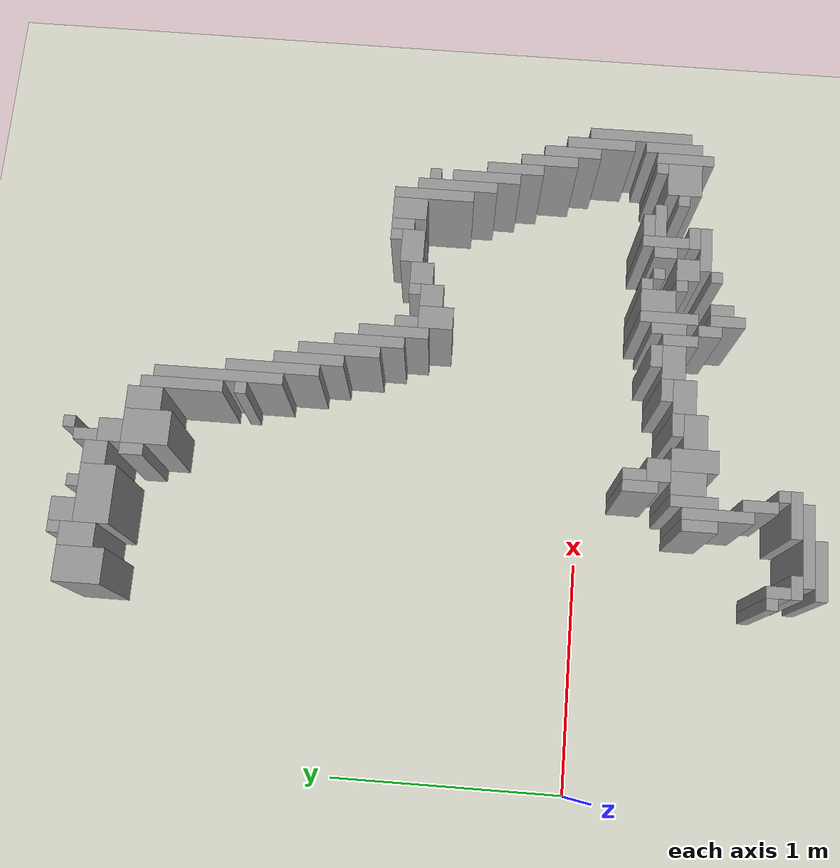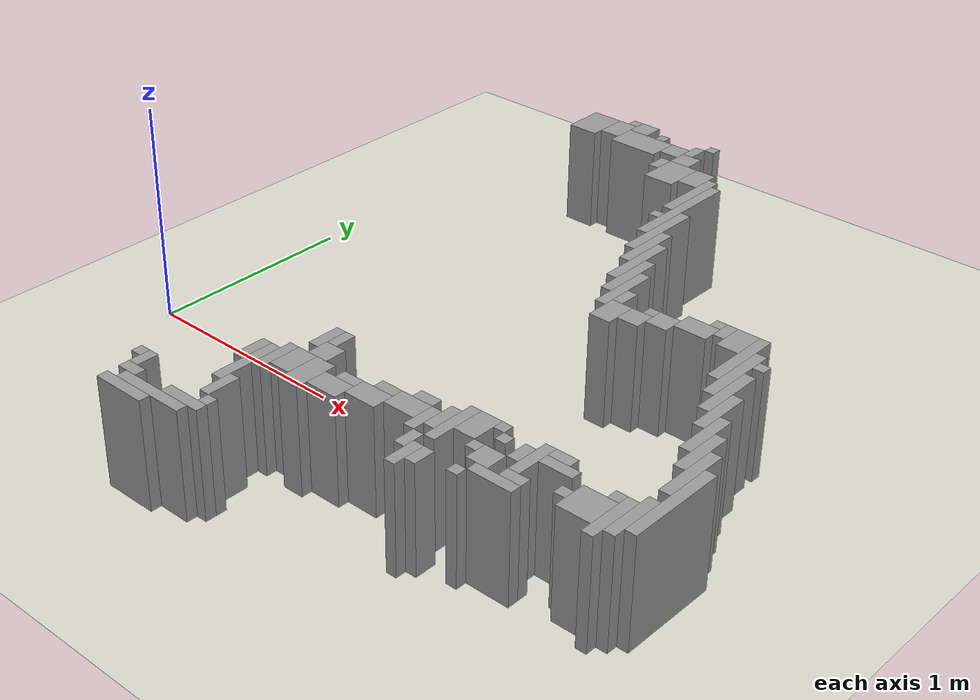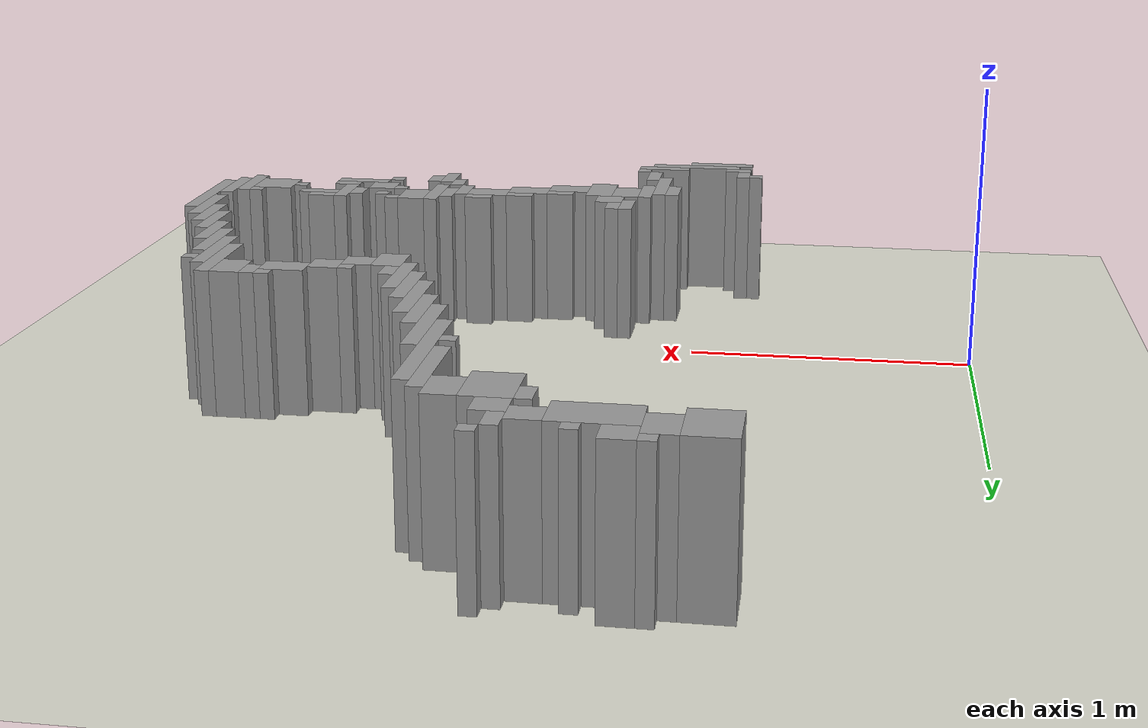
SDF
<sdf version="1.9">
 <world name="jetrover_room">
  <model name="ground_plane">
   <static>true</static>
   <link name="link">
    <collision name="c">
     <geometry><plane><normal>0 0 1</normal><size>20 20</size></plane></geometry>
     <surface><friction><ode><mu>1.0</mu><mu2>1.0</mu2></ode></friction></surface>
    </collision>
    <visual name="v">
     <geometry><plane><normal>0 0 1</normal><size>20 20</size></plane></geometry>
     <material><ambient>0.85 0.85 0.8 1</ambient><diffuse>0.85 0.85 0.8 1</diffuse></material>
    </visual>
   </link>
  </model>
  <model name="walls">
   <static>true</static>
   <link name="w5">
    <pose>0.9710 -0.9590 0.2500 0 0 0</pose>
    <collision name="c"><geometry><box><size>0.2500 0.0500 0.5000</size></box></geometry></collision>
    <visual name="v">
     <geometry><box><size>0.2500 0.0500 0.5000</size></box></geometry>
     <material><ambient>0.6 0.6 0.6 1</ambient><diffuse>0.6 0.6 0.6 1</diffuse></material>
    </visual>
   </link>
   <link name="w7">
    <pose>1.0710 -0.9090 0.2500 0 0 0</pose>
    <collision name="c"><geometry><box><size>0.3500 0.0500 0.5000</size></box></geometry></collision>
    <visual name="v">
     <geometry><box><size>0.3500 0.0500 0.5000</size></box></geometry>
     <material><ambient>0.6 0.6 0.6 1</ambient><diffuse>0.6 0.6 0.6 1</diffuse></material>
    </visual>
   </link>
   <link name="w10">
    <pose>0.8960 -0.8590 0.2500 0 0 0</pose>
    <collision name="c"><geometry><box><size>0.1000 0.0500 0.5000</size></box></geometry></collision>
    <visual name="v">
     <geometry><box><size>0.1000 0.0500 0.5000</size></box></geometry>
     <material><ambient>0.6 0.6 0.6 1</ambient><diffuse>0.6 0.6 0.6 1</diffuse></material>
    </visual>
   </link>
   <link name="w11">
    <pose>1.1960 -0.8590 0.2500 0 0 0</pose>
    <collision name="c"><geometry><box><size>0.2000 0.0500 0.5000</size></box></geometry></collision>
    <visual name="v">
     <geometry><box><size>0.2000 0.0500 0.5000</size></box></geometry>
     <material><ambient>0.6 0.6 0.6 1</ambient><diffuse>0.6 0.6 0.6 1</diffuse></material>
    </visual>
   </link>
   <link name="w13">
    <pose>0.8710 -0.7840 0.2500 0 0 0</pose>
    <collision name="c"><geometry><box><size>0.0500 0.1000 0.5000</size></box></geometry></collision>
    <visual name="v">
     <geometry><box><size>0.0500 0.1000 0.5000</size></box></geometry>
     <material><ambient>0.6 0.6 0.6 1</ambient><diffuse>0.6 0.6 0.6 1</diffuse></material>
    </visual>
   </link>
   <link name="w14">
    <pose>1.2710 -0.8090 0.2500 0 0 0</pose>
    <collision name="c"><geometry><box><size>0.0500 0.0500 0.5000</size></box></geometry></collision>
    <visual name="v">
     <geometry><box><size>0.0500 0.0500 0.5000</size></box></geometry>
     <material><ambient>0.6 0.6 0.6 1</ambient><diffuse>0.6 0.6 0.6 1</diffuse></material>
    </visual>
   </link>
   <link name="w18">
    <pose>0.8210 -0.7590 0.2500 0 0 0</pose>
    <collision name="c"><geometry><box><size>0.0500 0.0500 0.5000</size></box></geometry></collision>
    <visual name="v">
     <geometry><box><size>0.0500 0.0500 0.5000</size></box></geometry>
     <material><ambient>0.6 0.6 0.6 1</ambient><diffuse>0.6 0.6 0.6 1</diffuse></material>
    </visual>
   </link>
   <link name="w19">
    <pose>1.2210 -0.7090 0.2500 0 0 0</pose>
    <collision name="c"><geometry><box><size>0.0500 0.1500 0.5000</size></box></geometry></collision>
    <visual name="v">
     <geometry><box><size>0.0500 0.1500 0.5000</size></box></geometry>
     <material><ambient>0.6 0.6 0.6 1</ambient><diffuse>0.6 0.6 0.6 1</diffuse></material>
    </visual>
   </link>
   <link name="w20">
    <pose>1.1710 -0.5340 0.2500 0 0 0</pose>
    <collision name="c"><geometry><box><size>0.0500 0.3000 0.5000</size></box></geometry></collision>
    <visual name="v">
     <geometry><box><size>0.0500 0.3000 0.5000</size></box></geometry>
     <material><ambient>0.6 0.6 0.6 1</ambient><diffuse>0.6 0.6 0.6 1</diffuse></material>
    </visual>
   </link>
   <link name="w22">
    <pose>2.0210 -0.5590 0.2500 0 0 0</pose>
    <collision name="c"><geometry><box><size>0.0500 0.1500 0.5000</size></box></geometry></collision>
    <visual name="v">
     <geometry><box><size>0.0500 0.1500 0.5000</size></box></geometry>
     <material><ambient>0.6 0.6 0.6 1</ambient><diffuse>0.6 0.6 0.6 1</diffuse></material>
    </visual>
   </link>
   <link name="w23">
    <pose>2.0710 -0.5340 0.2500 0 0 0</pose>
    <collision name="c"><geometry><box><size>0.0500 0.1000 0.5000</size></box></geometry></collision>
    <visual name="v">
     <geometry><box><size>0.0500 0.1000 0.5000</size></box></geometry>
     <material><ambient>0.6 0.6 0.6 1</ambient><diffuse>0.6 0.6 0.6 1</diffuse></material>
    </visual>
   </link>
   <link name="w25">
    <pose>1.1210 -0.4590 0.2500 0 0 0</pose>
    <collision name="c"><geometry><box><size>0.0500 0.1500 0.5000</size></box></geometry></collision>
    <visual name="v">
     <geometry><box><size>0.0500 0.1500 0.5000</size></box></geometry>
     <material><ambient>0.6 0.6 0.6 1</ambient><diffuse>0.6 0.6 0.6 1</diffuse></material>
    </visual>
   </link>
   <link name="w26">
    <pose>1.2210 -0.4340 0.2500 0 0 0</pose>
    <collision name="c"><geometry><box><size>0.0500 0.2000 0.5000</size></box></geometry></collision>
    <visual name="v">
     <geometry><box><size>0.0500 0.2000 0.5000</size></box></geometry>
     <material><ambient>0.6 0.6 0.6 1</ambient><diffuse>0.6 0.6 0.6 1</diffuse></material>
    </visual>
   </link>
   <link name="w27">
    <pose>1.3960 -0.4340 0.2500 0 0 0</pose>
    <collision name="c"><geometry><box><size>0.1000 0.2000 0.5000</size></box></geometry></collision>
    <visual name="v">
     <geometry><box><size>0.1000 0.2000 0.5000</size></box></geometry>
     <material><ambient>0.6 0.6 0.6 1</ambient><diffuse>0.6 0.6 0.6 1</diffuse></material>
    </visual>
   </link>
   <link name="w28">
    <pose>1.9710 -0.4840 0.2500 0 0 0</pose>
    <collision name="c"><geometry><box><size>0.0500 0.1000 0.5000</size></box></geometry></collision>
    <visual name="v">
     <geometry><box><size>0.0500 0.1000 0.5000</size></box></geometry>
     <material><ambient>0.6 0.6 0.6 1</ambient><diffuse>0.6 0.6 0.6 1</diffuse></material>
    </visual>
   </link>
   <link name="w29">
    <pose>2.2210 -0.5090 0.2500 0 0 0</pose>
    <collision name="c"><geometry><box><size>0.0500 0.0500 0.5000</size></box></geometry></collision>
    <visual name="v">
     <geometry><box><size>0.0500 0.0500 0.5000</size></box></geometry>
     <material><ambient>0.6 0.6 0.6 1</ambient><diffuse>0.6 0.6 0.6 1</diffuse></material>
    </visual>
   </link>
   <link name="w30">
    <pose>1.2960 -0.4090 0.2500 0 0 0</pose>
    <collision name="c"><geometry><box><size>0.1000 0.1500 0.5000</size></box></geometry></collision>
    <visual name="v">
     <geometry><box><size>0.1000 0.1500 0.5000</size></box></geometry>
     <material><ambient>0.6 0.6 0.6 1</ambient><diffuse>0.6 0.6 0.6 1</diffuse></material>
    </visual>
   </link>
   <link name="w31">
    <pose>1.5210 -0.4340 0.2500 0 0 0</pose>
    <collision name="c"><geometry><box><size>0.1500 0.1000 0.5000</size></box></geometry></collision>
    <visual name="v">
     <geometry><box><size>0.1500 0.1000 0.5000</size></box></geometry>
     <material><ambient>0.6 0.6 0.6 1</ambient><diffuse>0.6 0.6 0.6 1</diffuse></material>
    </visual>
   </link>
   <link name="w32">
    <pose>2.3460 -0.4590 0.2500 0 0 0</pose>
    <collision name="c"><geometry><box><size>0.2000 0.0500 0.5000</size></box></geometry></collision>
    <visual name="v">
     <geometry><box><size>0.2000 0.0500 0.5000</size></box></geometry>
     <material><ambient>0.6 0.6 0.6 1</ambient><diffuse>0.6 0.6 0.6 1</diffuse></material>
    </visual>
   </link>
   <link name="w33">
    <pose>2.7710 -0.3590 0.2500 0 0 0</pose>
    <collision name="c"><geometry><box><size>0.0500 0.2500 0.5000</size></box></geometry></collision>
    <visual name="v">
     <geometry><box><size>0.0500 0.2500 0.5000</size></box></geometry>
     <material><ambient>0.6 0.6 0.6 1</ambient><diffuse>0.6 0.6 0.6 1</diffuse></material>
    </visual>
   </link>
   <link name="w35">
    <pose>1.6710 -0.3840 0.2500 0 0 0</pose>
    <collision name="c"><geometry><box><size>0.1500 0.1000 0.5000</size></box></geometry></collision>
    <visual name="v">
     <geometry><box><size>0.1500 0.1000 0.5000</size></box></geometry>
     <material><ambient>0.6 0.6 0.6 1</ambient><diffuse>0.6 0.6 0.6 1</diffuse></material>
    </visual>
   </link>
   <link name="w36">
    <pose>1.9210 -0.3590 0.2500 0 0 0</pose>
    <collision name="c"><geometry><box><size>0.0500 0.1500 0.5000</size></box></geometry></collision>
    <visual name="v">
     <geometry><box><size>0.0500 0.1500 0.5000</size></box></geometry>
     <material><ambient>0.6 0.6 0.6 1</ambient><diffuse>0.6 0.6 0.6 1</diffuse></material>
    </visual>
   </link>
   <link name="w37">
    <pose>2.0210 -0.3090 0.2500 0 0 0</pose>
    <collision name="c"><geometry><box><size>0.0500 0.2500 0.5000</size></box></geometry></collision>
    <visual name="v">
     <geometry><box><size>0.0500 0.2500 0.5000</size></box></geometry>
     <material><ambient>0.6 0.6 0.6 1</ambient><diffuse>0.6 0.6 0.6 1</diffuse></material>
    </visual>
   </link>
   <link name="w38">
    <pose>2.2460 -0.3840 0.2500 0 0 0</pose>
    <collision name="c"><geometry><box><size>0.1000 0.1000 0.5000</size></box></geometry></collision>
    <visual name="v">
     <geometry><box><size>0.1000 0.1000 0.5000</size></box></geometry>
     <material><ambient>0.6 0.6 0.6 1</ambient><diffuse>0.6 0.6 0.6 1</diffuse></material>
    </visual>
   </link>
   <link name="w39">
    <pose>2.3960 -0.4090 0.2500 0 0 0</pose>
    <collision name="c"><geometry><box><size>0.1000 0.0500 0.5000</size></box></geometry></collision>
    <visual name="v">
     <geometry><box><size>0.1000 0.0500 0.5000</size></box></geometry>
     <material><ambient>0.6 0.6 0.6 1</ambient><diffuse>0.6 0.6 0.6 1</diffuse></material>
    </visual>
   </link>
   <link name="w40">
    <pose>2.6710 -0.3590 0.2500 0 0 0</pose>
    <collision name="c"><geometry><box><size>0.1500 0.1500 0.5000</size></box></geometry></collision>
    <visual name="v">
     <geometry><box><size>0.1500 0.1500 0.5000</size></box></geometry>
     <material><ambient>0.6 0.6 0.6 1</ambient><diffuse>0.6 0.6 0.6 1</diffuse></material>
    </visual>
   </link>
   <link name="w41">
    <pose>2.8210 -0.3090 0.2500 0 0 0</pose>
    <collision name="c"><geometry><box><size>0.0500 0.2500 0.5000</size></box></geometry></collision>
    <visual name="v">
     <geometry><box><size>0.0500 0.2500 0.5000</size></box></geometry>
     <material><ambient>0.6 0.6 0.6 1</ambient><diffuse>0.6 0.6 0.6 1</diffuse></material>
    </visual>
   </link>
   <link name="w43">
    <pose>1.5460 -0.3590 0.2500 0 0 0</pose>
    <collision name="c"><geometry><box><size>0.1000 0.0500 0.5000</size></box></geometry></collision>
    <visual name="v">
     <geometry><box><size>0.1000 0.0500 0.5000</size></box></geometry>
     <material><ambient>0.6 0.6 0.6 1</ambient><diffuse>0.6 0.6 0.6 1</diffuse></material>
    </visual>
   </link>
   <link name="w44">
    <pose>1.8210 -0.3340 0.2500 0 0 0</pose>
    <collision name="c"><geometry><box><size>0.1500 0.1000 0.5000</size></box></geometry></collision>
    <visual name="v">
     <geometry><box><size>0.1500 0.1000 0.5000</size></box></geometry>
     <material><ambient>0.6 0.6 0.6 1</ambient><diffuse>0.6 0.6 0.6 1</diffuse></material>
    </visual>
   </link>
   <link name="w45">
    <pose>1.9710 -0.3090 0.2500 0 0 0</pose>
    <collision name="c"><geometry><box><size>0.0500 0.1500 0.5000</size></box></geometry></collision>
    <visual name="v">
     <geometry><box><size>0.0500 0.1500 0.5000</size></box></geometry>
     <material><ambient>0.6 0.6 0.6 1</ambient><diffuse>0.6 0.6 0.6 1</diffuse></material>
    </visual>
   </link>
   <link name="w46">
    <pose>2.1710 -0.3590 0.2500 0 0 0</pose>
    <collision name="c"><geometry><box><size>0.0500 0.0500 0.5000</size></box></geometry></collision>
    <visual name="v">
     <geometry><box><size>0.0500 0.0500 0.5000</size></box></geometry>
     <material><ambient>0.6 0.6 0.6 1</ambient><diffuse>0.6 0.6 0.6 1</diffuse></material>
    </visual>
   </link>
   <link name="w47">
    <pose>2.3710 -0.2840 0.2500 0 0 0</pose>
    <collision name="c"><geometry><box><size>0.0500 0.2000 0.5000</size></box></geometry></collision>
    <visual name="v">
     <geometry><box><size>0.0500 0.2000 0.5000</size></box></geometry>
     <material><ambient>0.6 0.6 0.6 1</ambient><diffuse>0.6 0.6 0.6 1</diffuse></material>
    </visual>
   </link>
   <link name="w48">
    <pose>2.5710 -0.3590 0.2500 0 0 0</pose>
    <collision name="c"><geometry><box><size>0.0500 0.0500 0.5000</size></box></geometry></collision>
    <visual name="v">
     <geometry><box><size>0.0500 0.0500 0.5000</size></box></geometry>
     <material><ambient>0.6 0.6 0.6 1</ambient><diffuse>0.6 0.6 0.6 1</diffuse></material>
    </visual>
   </link>
   <link name="w49">
    <pose>2.8710 -0.1590 0.2500 0 0 0</pose>
    <collision name="c"><geometry><box><size>0.0500 0.4500 0.5000</size></box></geometry></collision>
    <visual name="v">
     <geometry><box><size>0.0500 0.4500 0.5000</size></box></geometry>
     <material><ambient>0.6 0.6 0.6 1</ambient><diffuse>0.6 0.6 0.6 1</diffuse></material>
    </visual>
   </link>
   <link name="w51">
    <pose>1.3460 -0.2840 0.2500 0 0 0</pose>
    <collision name="c"><geometry><box><size>0.1000 0.1000 0.5000</size></box></geometry></collision>
    <visual name="v">
     <geometry><box><size>0.1000 0.1000 0.5000</size></box></geometry>
     <material><ambient>0.6 0.6 0.6 1</ambient><diffuse>0.6 0.6 0.6 1</diffuse></material>
    </visual>
   </link>
   <link name="w52">
    <pose>1.6960 -0.3090 0.2500 0 0 0</pose>
    <collision name="c"><geometry><box><size>0.1000 0.0500 0.5000</size></box></geometry></collision>
    <visual name="v">
     <geometry><box><size>0.1000 0.0500 0.5000</size></box></geometry>
     <material><ambient>0.6 0.6 0.6 1</ambient><diffuse>0.6 0.6 0.6 1</diffuse></material>
    </visual>
   </link>
   <link name="w53">
    <pose>2.0960 -0.2590 0.2500 0 0 0</pose>
    <collision name="c"><geometry><box><size>0.1000 0.1500 0.5000</size></box></geometry></collision>
    <visual name="v">
     <geometry><box><size>0.1000 0.1500 0.5000</size></box></geometry>
     <material><ambient>0.6 0.6 0.6 1</ambient><diffuse>0.6 0.6 0.6 1</diffuse></material>
    </visual>
   </link>
   <link name="w54">
    <pose>2.3210 -0.2840 0.2500 0 0 0</pose>
    <collision name="c"><geometry><box><size>0.0500 0.1000 0.5000</size></box></geometry></collision>
    <visual name="v">
     <geometry><box><size>0.0500 0.1000 0.5000</size></box></geometry>
     <material><ambient>0.6 0.6 0.6 1</ambient><diffuse>0.6 0.6 0.6 1</diffuse></material>
    </visual>
   </link>
   <link name="w58">
    <pose>1.2710 -0.2090 0.2500 0 0 0</pose>
    <collision name="c"><geometry><box><size>0.0500 0.1500 0.5000</size></box></geometry></collision>
    <visual name="v">
     <geometry><box><size>0.0500 0.1500 0.5000</size></box></geometry>
     <material><ambient>0.6 0.6 0.6 1</ambient><diffuse>0.6 0.6 0.6 1</diffuse></material>
    </visual>
   </link>
   <link name="w59">
    <pose>1.8460 -0.2590 0.2500 0 0 0</pose>
    <collision name="c"><geometry><box><size>0.1000 0.0500 0.5000</size></box></geometry></collision>
    <visual name="v">
     <geometry><box><size>0.1000 0.0500 0.5000</size></box></geometry>
     <material><ambient>0.6 0.6 0.6 1</ambient><diffuse>0.6 0.6 0.6 1</diffuse></material>
    </visual>
   </link>
   <link name="w60">
    <pose>2.2210 -0.2590 0.2500 0 0 0</pose>
    <collision name="c"><geometry><box><size>0.0500 0.0500 0.5000</size></box></geometry></collision>
    <visual name="v">
     <geometry><box><size>0.0500 0.0500 0.5000</size></box></geometry>
     <material><ambient>0.6 0.6 0.6 1</ambient><diffuse>0.6 0.6 0.6 1</diffuse></material>
    </visual>
   </link>
   <link name="w61">
    <pose>2.4710 -0.2590 0.2500 0 0 0</pose>
    <collision name="c"><geometry><box><size>0.1500 0.0500 0.5000</size></box></geometry></collision>
    <visual name="v">
     <geometry><box><size>0.1500 0.0500 0.5000</size></box></geometry>
     <material><ambient>0.6 0.6 0.6 1</ambient><diffuse>0.6 0.6 0.6 1</diffuse></material>
    </visual>
   </link>
   <link name="w62">
    <pose>2.7210 -0.2590 0.2500 0 0 0</pose>
    <collision name="c"><geometry><box><size>0.0500 0.0500 0.5000</size></box></geometry></collision>
    <visual name="v">
     <geometry><box><size>0.0500 0.0500 0.5000</size></box></geometry>
     <material><ambient>0.6 0.6 0.6 1</ambient><diffuse>0.6 0.6 0.6 1</diffuse></material>
    </visual>
   </link>
   <link name="w63">
    <pose>1.3210 -0.1840 0.2500 0 0 0</pose>
    <collision name="c"><geometry><box><size>0.0500 0.1000 0.5000</size></box></geometry></collision>
    <visual name="v">
     <geometry><box><size>0.0500 0.1000 0.5000</size></box></geometry>
     <material><ambient>0.6 0.6 0.6 1</ambient><diffuse>0.6 0.6 0.6 1</diffuse></material>
    </visual>
   </link>
   <link name="w64">
    <pose>2.1710 -0.2090 0.2500 0 0 0</pose>
    <collision name="c"><geometry><box><size>0.0500 0.0500 0.5000</size></box></geometry></collision>
    <visual name="v">
     <geometry><box><size>0.0500 0.0500 0.5000</size></box></geometry>
     <material><ambient>0.6 0.6 0.6 1</ambient><diffuse>0.6 0.6 0.6 1</diffuse></material>
    </visual>
   </link>
   <link name="w65">
    <pose>2.4460 -0.2090 0.2500 0 0 0</pose>
    <collision name="c"><geometry><box><size>0.1000 0.0500 0.5000</size></box></geometry></collision>
    <visual name="v">
     <geometry><box><size>0.1000 0.0500 0.5000</size></box></geometry>
     <material><ambient>0.6 0.6 0.6 1</ambient><diffuse>0.6 0.6 0.6 1</diffuse></material>
    </visual>
   </link>
   <link name="w68">
    <pose>2.8210 0.0160 0.2500 0 0 0</pose>
    <collision name="c"><geometry><box><size>0.0500 0.3000 0.5000</size></box></geometry></collision>
    <visual name="v">
     <geometry><box><size>0.0500 0.3000 0.5000</size></box></geometry>
     <material><ambient>0.6 0.6 0.6 1</ambient><diffuse>0.6 0.6 0.6 1</diffuse></material>
    </visual>
   </link>
   <link name="w72">
    <pose>2.7710 0.1410 0.2500 0 0 0</pose>
    <collision name="c"><geometry><box><size>0.0500 0.2500 0.5000</size></box></geometry></collision>
    <visual name="v">
     <geometry><box><size>0.0500 0.2500 0.5000</size></box></geometry>
     <material><ambient>0.6 0.6 0.6 1</ambient><diffuse>0.6 0.6 0.6 1</diffuse></material>
    </visual>
   </link>
   <link name="w76">
    <pose>2.7210 0.2410 0.2500 0 0 0</pose>
    <collision name="c"><geometry><box><size>0.0500 0.2500 0.5000</size></box></geometry></collision>
    <visual name="v">
     <geometry><box><size>0.0500 0.2500 0.5000</size></box></geometry>
     <material><ambient>0.6 0.6 0.6 1</ambient><diffuse>0.6 0.6 0.6 1</diffuse></material>
    </visual>
   </link>
   <link name="w80">
    <pose>2.6710 0.3910 0.2500 0 0 0</pose>
    <collision name="c"><geometry><box><size>0.0500 0.2500 0.5000</size></box></geometry></collision>
    <visual name="v">
     <geometry><box><size>0.0500 0.2500 0.5000</size></box></geometry>
     <material><ambient>0.6 0.6 0.6 1</ambient><diffuse>0.6 0.6 0.6 1</diffuse></material>
    </visual>
   </link>
   <link name="w82">
    <pose>2.6210 0.5160 0.2500 0 0 0</pose>
    <collision name="c"><geometry><box><size>0.0500 0.3000 0.5000</size></box></geometry></collision>
    <visual name="v">
     <geometry><box><size>0.0500 0.3000 0.5000</size></box></geometry>
     <material><ambient>0.6 0.6 0.6 1</ambient><diffuse>0.6 0.6 0.6 1</diffuse></material>
    </visual>
   </link>
   <link name="w83">
    <pose>2.5710 0.6410 0.2500 0 0 0</pose>
    <collision name="c"><geometry><box><size>0.0500 0.3500 0.5000</size></box></geometry></collision>
    <visual name="v">
     <geometry><box><size>0.0500 0.3500 0.5000</size></box></geometry>
     <material><ambient>0.6 0.6 0.6 1</ambient><diffuse>0.6 0.6 0.6 1</diffuse></material>
    </visual>
   </link>
   <link name="w84">
    <pose>2.5210 0.7410 0.2500 0 0 0</pose>
    <collision name="c"><geometry><box><size>0.0500 0.3500 0.5000</size></box></geometry></collision>
    <visual name="v">
     <geometry><box><size>0.0500 0.3500 0.5000</size></box></geometry>
     <material><ambient>0.6 0.6 0.6 1</ambient><diffuse>0.6 0.6 0.6 1</diffuse></material>
    </visual>
   </link>
   <link name="w86">
    <pose>1.9460 0.6910 0.2500 0 0 0</pose>
    <collision name="c"><geometry><box><size>0.1000 0.1500 0.5000</size></box></geometry></collision>
    <visual name="v">
     <geometry><box><size>0.1000 0.1500 0.5000</size></box></geometry>
     <material><ambient>0.6 0.6 0.6 1</ambient><diffuse>0.6 0.6 0.6 1</diffuse></material>
    </visual>
   </link>
   <link name="w89">
    <pose>2.0460 0.7160 0.2500 0 0 0</pose>
    <collision name="c"><geometry><box><size>0.1000 0.1000 0.5000</size></box></geometry></collision>
    <visual name="v">
     <geometry><box><size>0.1000 0.1000 0.5000</size></box></geometry>
     <material><ambient>0.6 0.6 0.6 1</ambient><diffuse>0.6 0.6 0.6 1</diffuse></material>
    </visual>
   </link>
   <link name="w92">
    <pose>1.8710 0.8660 0.2500 0 0 0</pose>
    <collision name="c"><geometry><box><size>0.0500 0.3000 0.5000</size></box></geometry></collision>
    <visual name="v">
     <geometry><box><size>0.0500 0.3000 0.5000</size></box></geometry>
     <material><ambient>0.6 0.6 0.6 1</ambient><diffuse>0.6 0.6 0.6 1</diffuse></material>
    </visual>
   </link>
   <link name="w93">
    <pose>2.1460 0.7660 0.2500 0 0 0</pose>
    <collision name="c"><geometry><box><size>0.1000 0.1000 0.5000</size></box></geometry></collision>
    <visual name="v">
     <geometry><box><size>0.1000 0.1000 0.5000</size></box></geometry>
     <material><ambient>0.6 0.6 0.6 1</ambient><diffuse>0.6 0.6 0.6 1</diffuse></material>
    </visual>
   </link>
   <link name="w94">
    <pose>2.6210 0.7410 0.2500 0 0 0</pose>
    <collision name="c"><geometry><box><size>0.0500 0.0500 0.5000</size></box></geometry></collision>
    <visual name="v">
     <geometry><box><size>0.0500 0.0500 0.5000</size></box></geometry>
     <material><ambient>0.6 0.6 0.6 1</ambient><diffuse>0.6 0.6 0.6 1</diffuse></material>
    </visual>
   </link>
   <link name="w96">
    <pose>1.9210 0.8160 0.2500 0 0 0</pose>
    <collision name="c"><geometry><box><size>0.0500 0.1000 0.5000</size></box></geometry></collision>
    <visual name="v">
     <geometry><box><size>0.0500 0.1000 0.5000</size></box></geometry>
     <material><ambient>0.6 0.6 0.6 1</ambient><diffuse>0.6 0.6 0.6 1</diffuse></material>
    </visual>
   </link>
   <link name="w97">
    <pose>2.0710 0.7910 0.2500 0 0 0</pose>
    <collision name="c"><geometry><box><size>0.0500 0.0500 0.5000</size></box></geometry></collision>
    <visual name="v">
     <geometry><box><size>0.0500 0.0500 0.5000</size></box></geometry>
     <material><ambient>0.6 0.6 0.6 1</ambient><diffuse>0.6 0.6 0.6 1</diffuse></material>
    </visual>
   </link>
   <link name="w98">
    <pose>2.2710 0.8160 0.2500 0 0 0</pose>
    <collision name="c"><geometry><box><size>0.1500 0.1000 0.5000</size></box></geometry></collision>
    <visual name="v">
     <geometry><box><size>0.1500 0.1000 0.5000</size></box></geometry>
     <material><ambient>0.6 0.6 0.6 1</ambient><diffuse>0.6 0.6 0.6 1</diffuse></material>
    </visual>
   </link>
   <link name="w99">
    <pose>2.4460 0.8410 0.2500 0 0 0</pose>
    <collision name="c"><geometry><box><size>0.1000 0.1500 0.5000</size></box></geometry></collision>
    <visual name="v">
     <geometry><box><size>0.1000 0.1500 0.5000</size></box></geometry>
     <material><ambient>0.6 0.6 0.6 1</ambient><diffuse>0.6 0.6 0.6 1</diffuse></material>
    </visual>
   </link>
   <link name="w103">
    <pose>1.8210 0.9660 0.2500 0 0 0</pose>
    <collision name="c"><geometry><box><size>0.0500 0.3000 0.5000</size></box></geometry></collision>
    <visual name="v">
     <geometry><box><size>0.0500 0.3000 0.5000</size></box></geometry>
     <material><ambient>0.6 0.6 0.6 1</ambient><diffuse>0.6 0.6 0.6 1</diffuse></material>
    </visual>
   </link>
   <link name="w104">
    <pose>2.3710 0.8660 0.2500 0 0 0</pose>
    <collision name="c"><geometry><box><size>0.0500 0.1000 0.5000</size></box></geometry></collision>
    <visual name="v">
     <geometry><box><size>0.0500 0.1000 0.5000</size></box></geometry>
     <material><ambient>0.6 0.6 0.6 1</ambient><diffuse>0.6 0.6 0.6 1</diffuse></material>
    </visual>
   </link>
   <link name="w106">
    <pose>2.3210 0.8910 0.2500 0 0 0</pose>
    <collision name="c"><geometry><box><size>0.0500 0.0500 0.5000</size></box></geometry></collision>
    <visual name="v">
     <geometry><box><size>0.0500 0.0500 0.5000</size></box></geometry>
     <material><ambient>0.6 0.6 0.6 1</ambient><diffuse>0.6 0.6 0.6 1</diffuse></material>
    </visual>
   </link>
   <link name="w108">
    <pose>1.7710 1.0910 0.2500 0 0 0</pose>
    <collision name="c"><geometry><box><size>0.0500 0.3500 0.5000</size></box></geometry></collision>
    <visual name="v">
     <geometry><box><size>0.0500 0.3500 0.5000</size></box></geometry>
     <material><ambient>0.6 0.6 0.6 1</ambient><diffuse>0.6 0.6 0.6 1</diffuse></material>
    </visual>
   </link>
   <link name="w114">
    <pose>1.7210 1.2160 0.2500 0 0 0</pose>
    <collision name="c"><geometry><box><size>0.0500 0.3000 0.5000</size></box></geometry></collision>
    <visual name="v">
     <geometry><box><size>0.0500 0.3000 0.5000</size></box></geometry>
     <material><ambient>0.6 0.6 0.6 1</ambient><diffuse>0.6 0.6 0.6 1</diffuse></material>
    </visual>
   </link>
   <link name="w118">
    <pose>1.6710 1.3660 0.2500 0 0 0</pose>
    <collision name="c"><geometry><box><size>0.0500 0.4000 0.5000</size></box></geometry></collision>
    <visual name="v">
     <geometry><box><size>0.0500 0.4000 0.5000</size></box></geometry>
     <material><ambient>0.6 0.6 0.6 1</ambient><diffuse>0.6 0.6 0.6 1</diffuse></material>
    </visual>
   </link>
   <link name="w124">
    <pose>1.6210 1.5910 0.2500 0 0 0</pose>
    <collision name="c"><geometry><box><size>0.0500 0.5500 0.5000</size></box></geometry></collision>
    <visual name="v">
     <geometry><box><size>0.0500 0.5500 0.5000</size></box></geometry>
     <material><ambient>0.6 0.6 0.6 1</ambient><diffuse>0.6 0.6 0.6 1</diffuse></material>
    </visual>
   </link>
   <link name="w129">
    <pose>1.5710 1.4910 0.2500 0 0 0</pose>
    <collision name="c"><geometry><box><size>0.0500 0.0500 0.5000</size></box></geometry></collision>
    <visual name="v">
     <geometry><box><size>0.0500 0.0500 0.5000</size></box></geometry>
     <material><ambient>0.6 0.6 0.6 1</ambient><diffuse>0.6 0.6 0.6 1</diffuse></material>
    </visual>
   </link>
   <link name="w135">
    <pose>1.5710 1.7410 0.2500 0 0 0</pose>
    <collision name="c"><geometry><box><size>0.0500 0.3500 0.5000</size></box></geometry></collision>
    <visual name="v">
     <geometry><box><size>0.0500 0.3500 0.5000</size></box></geometry>
     <material><ambient>0.6 0.6 0.6 1</ambient><diffuse>0.6 0.6 0.6 1</diffuse></material>
    </visual>
   </link>
   <link name="w139">
    <pose>1.3710 1.8660 0.2500 0 0 0</pose>
    <collision name="c"><geometry><box><size>0.1500 0.2000 0.5000</size></box></geometry></collision>
    <visual name="v">
     <geometry><box><size>0.1500 0.2000 0.5000</size></box></geometry>
     <material><ambient>0.6 0.6 0.6 1</ambient><diffuse>0.6 0.6 0.6 1</diffuse></material>
    </visual>
   </link>
   <link name="w141">
    <pose>1.4960 1.8910 0.2500 0 0 0</pose>
    <collision name="c"><geometry><box><size>0.1000 0.1500 0.5000</size></box></geometry></collision>
    <visual name="v">
     <geometry><box><size>0.1000 0.1500 0.5000</size></box></geometry>
     <material><ambient>0.6 0.6 0.6 1</ambient><diffuse>0.6 0.6 0.6 1</diffuse></material>
    </visual>
   </link>
   <link name="w144">
    <pose>1.2710 1.9160 0.2500 0 0 0</pose>
    <collision name="c"><geometry><box><size>0.0500 0.1000 0.5000</size></box></geometry></collision>
    <visual name="v">
     <geometry><box><size>0.0500 0.1000 0.5000</size></box></geometry>
     <material><ambient>0.6 0.6 0.6 1</ambient><diffuse>0.6 0.6 0.6 1</diffuse></material>
    </visual>
   </link>
   <link name="w151">
    <pose>0.7710 2.0660 0.2500 0 0 0</pose>
    <collision name="c"><geometry><box><size>0.1500 0.2000 0.5000</size></box></geometry></collision>
    <visual name="v">
     <geometry><box><size>0.1500 0.2000 0.5000</size></box></geometry>
     <material><ambient>0.6 0.6 0.6 1</ambient><diffuse>0.6 0.6 0.6 1</diffuse></material>
    </visual>
   </link>
   <link name="w152">
    <pose>1.0710 2.0410 0.2500 0 0 0</pose>
    <collision name="c"><geometry><box><size>0.2500 0.1500 0.5000</size></box></geometry></collision>
    <visual name="v">
     <geometry><box><size>0.2500 0.1500 0.5000</size></box></geometry>
     <material><ambient>0.6 0.6 0.6 1</ambient><diffuse>0.6 0.6 0.6 1</diffuse></material>
    </visual>
   </link>
   <link name="w153">
    <pose>1.3460 2.0160 0.2500 0 0 0</pose>
    <collision name="c"><geometry><box><size>0.1000 0.1000 0.5000</size></box></geometry></collision>
    <visual name="v">
     <geometry><box><size>0.1000 0.1000 0.5000</size></box></geometry>
     <material><ambient>0.6 0.6 0.6 1</ambient><diffuse>0.6 0.6 0.6 1</diffuse></material>
    </visual>
   </link>
   <link name="w155">
    <pose>0.8960 2.0910 0.2500 0 0 0</pose>
    <collision name="c"><geometry><box><size>0.1000 0.1500 0.5000</size></box></geometry></collision>
    <visual name="v">
     <geometry><box><size>0.1000 0.1500 0.5000</size></box></geometry>
     <material><ambient>0.6 0.6 0.6 1</ambient><diffuse>0.6 0.6 0.6 1</diffuse></material>
    </visual>
   </link>
   <link name="w156">
    <pose>1.2460 2.0660 0.2500 0 0 0</pose>
    <collision name="c"><geometry><box><size>0.1000 0.1000 0.5000</size></box></geometry></collision>
    <visual name="v">
     <geometry><box><size>0.1000 0.1000 0.5000</size></box></geometry>
     <material><ambient>0.6 0.6 0.6 1</ambient><diffuse>0.6 0.6 0.6 1</diffuse></material>
    </visual>
   </link>
   <link name="w160">
    <pose>1.3210 2.1160 0.2500 0 0 0</pose>
    <collision name="c"><geometry><box><size>0.0500 0.1000 0.5000</size></box></geometry></collision>
    <visual name="v">
     <geometry><box><size>0.0500 0.1000 0.5000</size></box></geometry>
     <material><ambient>0.6 0.6 0.6 1</ambient><diffuse>0.6 0.6 0.6 1</diffuse></material>
    </visual>
   </link>
   <link name="w163">
    <pose>0.9960 2.1660 0.2500 0 0 0</pose>
    <collision name="c"><geometry><box><size>0.1000 0.1000 0.5000</size></box></geometry></collision>
    <visual name="v">
     <geometry><box><size>0.1000 0.1000 0.5000</size></box></geometry>
     <material><ambient>0.6 0.6 0.6 1</ambient><diffuse>0.6 0.6 0.6 1</diffuse></material>
    </visual>
   </link>
   <link name="w164">
    <pose>1.1210 2.1410 0.2500 0 0 0</pose>
    <collision name="c"><geometry><box><size>0.0500 0.0500 0.5000</size></box></geometry></collision>
    <visual name="v">
     <geometry><box><size>0.0500 0.0500 0.5000</size></box></geometry>
     <material><ambient>0.6 0.6 0.6 1</ambient><diffuse>0.6 0.6 0.6 1</diffuse></material>
    </visual>
   </link>
   <link name="w165">
    <pose>0.9210 2.1910 0.2500 0 0 0</pose>
    <collision name="c"><geometry><box><size>0.0500 0.0500 0.5000</size></box></geometry></collision>
    <visual name="v">
     <geometry><box><size>0.0500 0.0500 0.5000</size></box></geometry>
     <material><ambient>0.6 0.6 0.6 1</ambient><diffuse>0.6 0.6 0.6 1</diffuse></material>
    </visual>
   </link>
   <link name="w166">
    <pose>1.3710 2.1910 0.2500 0 0 0</pose>
    <collision name="c"><geometry><box><size>0.0500 0.0500 0.5000</size></box></geometry></collision>
    <visual name="v">
     <geometry><box><size>0.0500 0.0500 0.5000</size></box></geometry>
     <material><ambient>0.6 0.6 0.6 1</ambient><diffuse>0.6 0.6 0.6 1</diffuse></material>
    </visual>
   </link>
  </model>
 </world>
</sdf>
